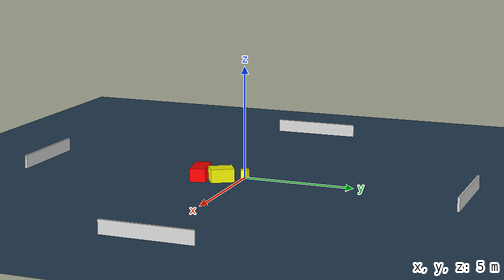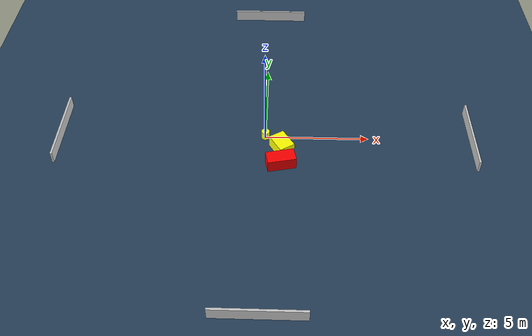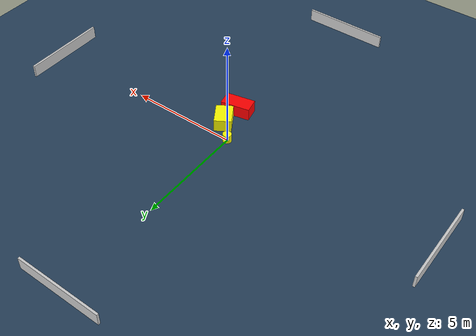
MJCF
<?xml version="1.0" ?>
<mujoco model="generated_environment">
  <option timestep="0.01" integrator="RK4" cone="elliptic"/>
  <default>
    <geom density="1"/>
  </default>
  <asset>
    <texture builtin="gradient" height="3072" name="skybox" rgb1="0.3 0.5 0.7" rgb2="0 0 0" type="skybox" width="512"/>
    <texture builtin="checker" height="300" name="groundplane" rgb1="0.2 0.3 0.4" rgb2="0.1 0.2 0.3" type="2d" width="300"/>
    <material name="groundplane" reflectance="0.2" texrepeat="5 5" texture="groundplane"/>
  </asset>
  <worldbody>
    <light dir="0 0 -1" directional="true" pos="0 0 1.5"/>
    <geom condim="3" friction="0.5 0.005 0.001" material="groundplane" name="floor" pos="0 0 0" size="0 0 0.05" type="plane"/>
    <body name="walls">
      <geom name="wall_1" condim="4" pos="-10.0 0.0 0.3" rgba="0.800000011920929 0.800000011920929 0.800000011920929 1.0" size="0.05 2.0 0.3" type="box"/>
      <geom name="wall_2" condim="4" pos="10.0 0.0 0.3" rgba="0.800000011920929 0.800000011920929 0.800000011920929 1.0" size="0.05 2.0 0.3" type="box"/>
      <geom name="wall_3" condim="4" pos="0.0 -10.0 0.3" rgba="0.800000011920929 0.800000011920929 0.800000011920929 1.0" size="2.0 0.05 0.3" type="box"/>
      <geom name="wall_4" condim="4" pos="0.0 10.0 0.3" rgba="0.800000011920929 0.800000011920929 0.800000011920929 1.0" size="2.0 0.05 0.3" type="box"/>
    </body>
    <body name="robot">
      <joint name="joint_x" type="slide" pos="0 0 0" axis="1 0 0"/>
      <joint name="joint_y" type="slide" pos="0 0 0" axis="0 1 0"/>
      <geom name="robot" type="cylinder" pos="0.0 0.0 0.2" size="0.2 0.2 0.0" mass="5.0" friction="1.0 0.005 0.0001" condim="4" rgba="1.0 1.0 0.0 1.0"/>
    </body>
    <body name="obstacle_1_movable">
      <geom name="obstacle_1_movable" condim="4" pos="0.7954141798143969 -0.7995422726269343 0.3" euler="0 0 121.63875904456663" friction="0.0 0.005 0.001" rgba="1.0 1.0 0.0 1.0" size="0.5271803450612407 0.3909374030885221 0.3" type="box" mass="0.1"/>
      <joint type="free"/>
    </body>
    <body name="obstacle_2_static">
      <geom name="obstacle_2_static" condim="4" pos="0.7663394608714947 -1.819406115248273 0.3" euler="0 0 11.988025797795938" friction="0.0 0.005 0.001" rgba="1.0 0.0 0.0 1.0" size="0.6810188422926977 0.34786365288097804 0.3" type="box"/>
    </body>
  </worldbody>
  <actuator>
    <motor name="actuator_x" joint="joint_x" gear="1" ctrlrange="-1 1"/>
    <motor name="actuator_y" joint="joint_y" gear="1" ctrlrange="-1 1"/>
  </actuator>
</mujoco>
